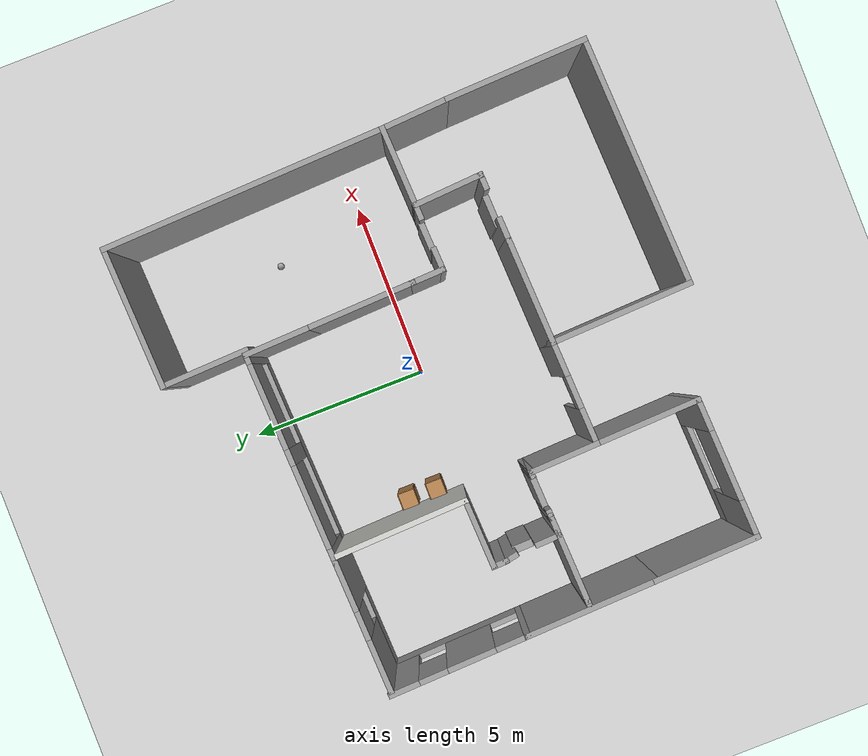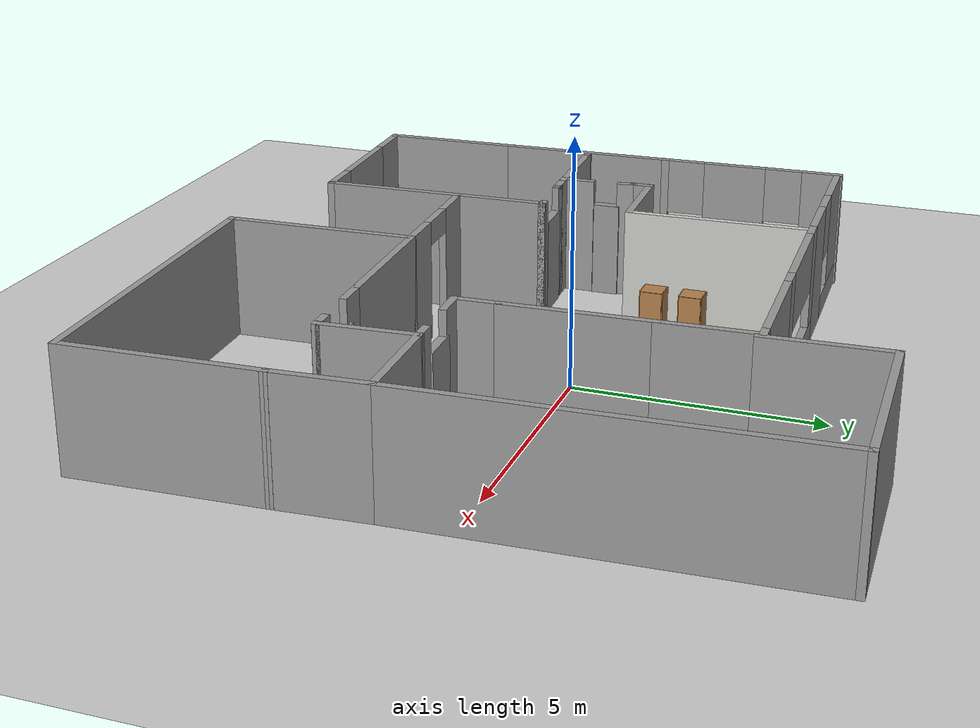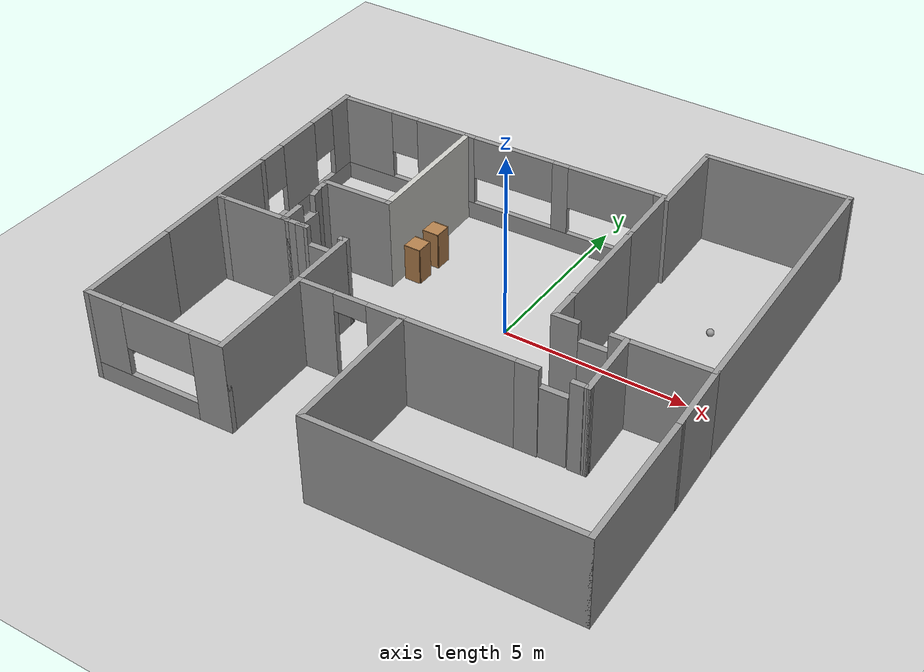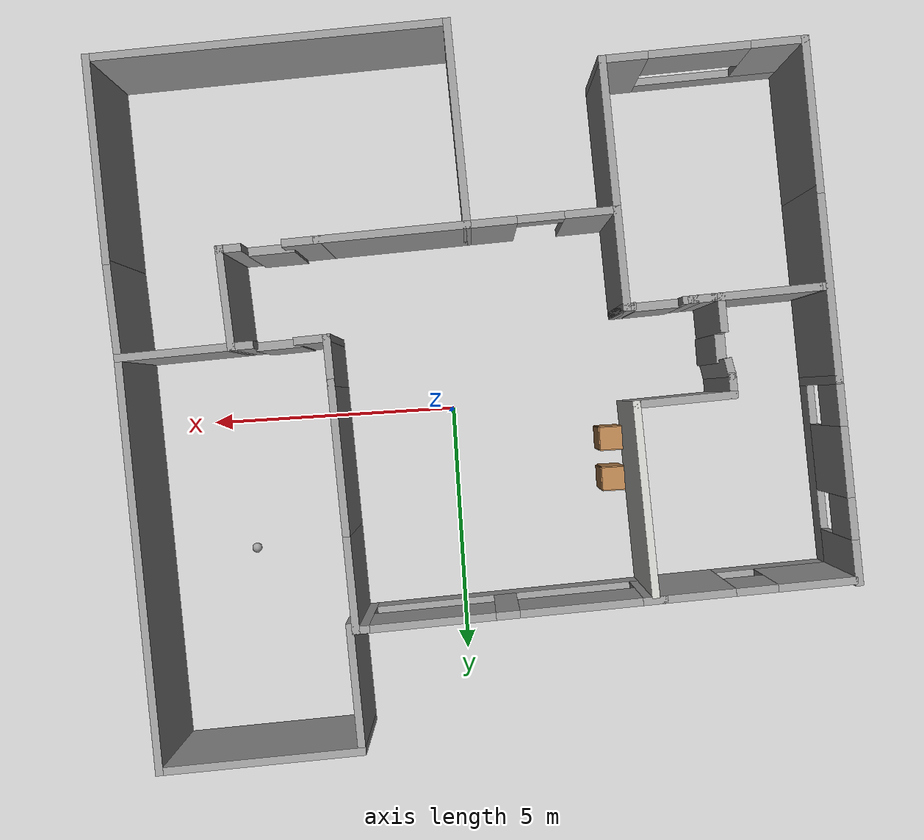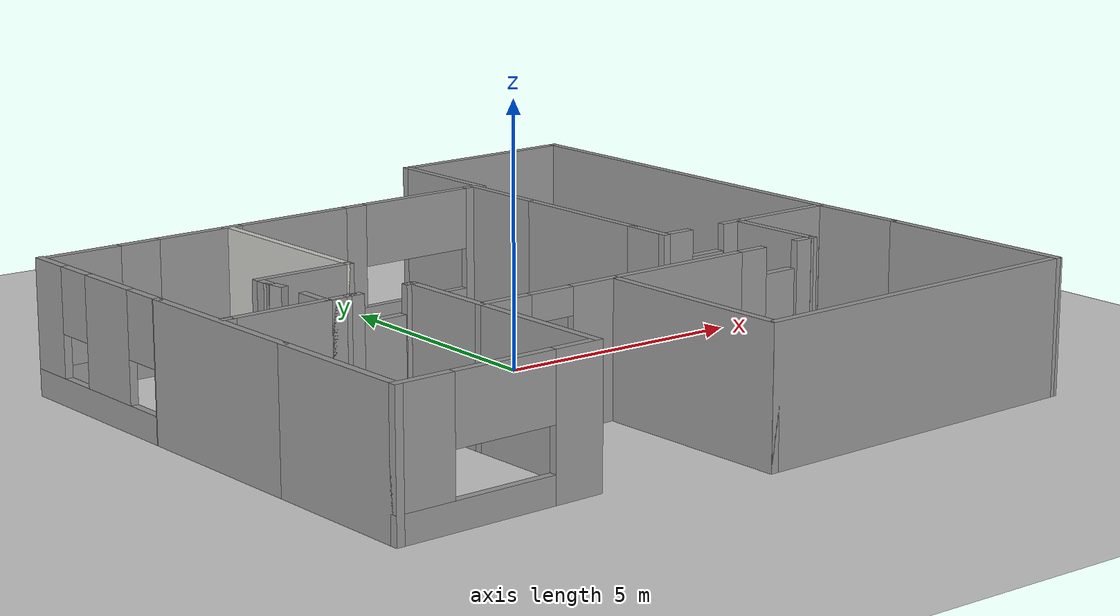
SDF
<sdf version="1.6">
 <world name="default">
  <light name="sun" type="directional">
   <pose>0 0 10 0 -0 0</pose>
   <diffuse>0.8 0.8 0.8 1</diffuse>
   <specular>0.2 0.2 0.2 1</specular>
   <attenuation>
    <range>1000</range>
    <constant>0.9</constant>
    <linear>0.01</linear>
    <quadratic>0.001</quadratic>
   </attenuation>
   <direction>-0.5 0.1 -0.9</direction>
  </light>
  <model name="ground_plane">
   <static>1</static>
   <link name="link">
    <collision name="collision">
     <geometry><plane><normal>0 0 1</normal><size>100 100</size></plane></geometry>
     <surface><friction><ode><mu>100</mu><mu2>50</mu2></ode></friction></surface>
    </collision>
    <visual name="visual">
     <cast_shadows>0</cast_shadows>
     <geometry><plane><normal>0 0 1</normal><size>100 100</size></plane></geometry>
     <material>
      <script><uri>file://media/materials/scripts/gazebo.material</uri><name>Gazebo/Grey</name></script>
     </material>
    </visual>
   </link>
  </model>
  <gravity>0 0 -9.8</gravity>
  <magnetic_field>6e-06 2.3e-05 -4.2e-05</magnetic_field>
  <atmosphere type="adiabatic"/>
  <physics name="default_physics" default="0" type="ode">
   <max_step_size>0.001</max_step_size>
   <real_time_factor>1</real_time_factor>
   <real_time_update_rate>1000</real_time_update_rate>
  </physics>
  <scene><ambient>0.4 0.4 0.4 1</ambient><background>0.7 0.7 0.7 1</background><shadows>1</shadows></scene>
  <spherical_coordinates>
   <surface_model>EARTH_WGS84</surface_model>
   <latitude_deg>0</latitude_deg>
   <longitude_deg>0</longitude_deg>
   <elevation>0</elevation>
   <heading_deg>0</heading_deg>
  </spherical_coordinates>
  <model name="my_world">
   <pose>-0.534202 -0.544996 0 0 -0 0.039051</pose>
   <link name="Door_1">
    <collision name="Door_1_Collision">
     <geometry><box><size>0.9 0.17 2</size></box></geometry>
     <pose>0 0 1 0 -0 0</pose>
    </collision>
    <visual name="Door_1_Visual">
     <pose>0 0 1 0 -0 0</pose>
     <geometry><box><size>0.9 0.17 2</size></box></geometry>
     <material>
      <script><uri>file://media/materials/scripts/gazebo.material</uri><name>Gazebo/Grey</name></script>
     </material>
    </visual>
    <pose>3.7552 -1.0485 0 0 -0 0</pose>
   </link>
   <link name="Door_2">
    <collision name="Door_2_Collision">
     <geometry><box><size>0.9 0.17 2</size></box></geometry>
     <pose>0 0 1 0 -0 0</pose>
    </collision>
    <visual name="Door_2_Visual">
     <pose>0 0 1 0 -0 0</pose>
     <geometry><box><size>0.9 0.17 2</size></box></geometry>
     <material>
      <script><uri>file://media/materials/scripts/gazebo.material</uri><name>Gazebo/Grey</name></script>
     </material>
    </visual>
    <pose>3.7207 -2.8885 0 0 -0 3.13801</pose>
   </link>
   <link name="Door_4">
    <collision name="Door_4_Collision">
     <geometry><box><size>0.555 0.2 2</size></box></geometry>
     <pose>0 0 1 0 -0 0</pose>
    </collision>
    <visual name="Door_4_Visual">
     <pose>0 0 1 0 -0 0</pose>
     <geometry><box><size>0.555 0.2 2</size></box></geometry>
     <material>
      <script><uri>file://media/materials/scripts/gazebo.material</uri><name>Gazebo/Grey</name></script>
     </material>
    </visual>
    <pose>-4.7088 -0.1285 0 0 -0 1.55395</pose>
   </link>
   <link name="Door_5">
    <collision name="Door_5_Collision">
     <geometry><box><size>0.9 0.17 2</size></box></geometry>
     <pose>0 0 1 0 -0 0</pose>
    </collision>
    <visual name="Door_5_Visual">
     <pose>0 0 1 0 -0 0</pose>
     <geometry><box><size>0.9 0.17 2</size></box></geometry>
     <material>
      <script><uri>file://media/materials/scripts/gazebo.material</uri><name>Gazebo/Grey</name></script>
     </material>
    </visual>
    <pose>-3.5818 -1.083 0 0 -0 0</pose>
   </link>
   <link name="Wall_0">
    <pose>-1.5008 -2.925 0 0 -0 0</pose>
    <visual name="Wall_0_Visual_0">
     <pose>-0.96325 0 1.25 0 -0 0</pose>
     <geometry><box><size>1.0735 0.15 2.5</size></box></geometry>
     <material>
      <script><uri>file://media/materials/scripts/gazebo.material</uri><name>Gazebo/Grey</name></script>
      <ambient>1 1 1 1</ambient>
     </material>
     <meta><layer>0</layer></meta>
    </visual>
    <collision name="Wall_0_Collision_0">
     <geometry><box><size>1.0735 0.15 2.5</size></box></geometry>
     <pose>-0.96325 0 1.25 0 -0 0</pose>
    </collision>
    <visual name="Wall_0_Visual_1">
     <pose>0.98675 0 1.25 0 -0 0</pose>
     <geometry><box><size>1.0265 0.15 2.5</size></box></geometry>
     <material>
      <script><uri>file://media/materials/scripts/gazebo.material</uri><name>Gazebo/Grey</name></script>
      <ambient>1 1 1 1</ambient>
     </material>
     <meta><layer>0</layer></meta>
    </visual>
    <collision name="Wall_0_Collision_1">
     <geometry><box><size>1.0265 0.15 2.5</size></box></geometry>
     <pose>0.98675 0 1.25 0 -0 0</pose>
    </collision>
    <visual name="Wall_0_Visual_2">
     <pose>0.0235 0 2.25 0 -0 0</pose>
     <geometry><box><size>0.9 0.15 0.5</size></box></geometry>
     <material>
      <script><uri>file://media/materials/scripts/gazebo.material</uri><name>Gazebo/Grey</name></script>
      <ambient>1 1 1 1</ambient>
     </material>
     <meta><layer>0</layer></meta>
    </visual>
    <collision name="Wall_0_Collision_2">
     <geometry><box><size>0.9 0.15 0.5</size></box></geometry>
     <pose>0.0235 0 2.25 0 -0 0</pose>
    </collision>
   </link>
   <link name="Wall_10">
    <collision name="Wall_10_Collision">
     <geometry><box><size>4 0.15 2.5</size></box></geometry>
     <pose>0 0 1.25 0 -0 0</pose>
    </collision>
    <visual name="Wall_10_Visual">
     <pose>0 0 1.25 0 -0 0</pose>
     <geometry><box><size>4 0.15 2.5</size></box></geometry>
     <material>
      <script><uri>file://media/materials/scripts/gazebo.material</uri><name>Gazebo/Grey</name></script>
      <ambient>1 1 1 1</ambient>
     </material>
     <meta><layer>0</layer></meta>
    </visual>
    <pose>6.7742 -4.85 0 0 -0 1.5708</pose>
   </link>
   <link name="Wall_12">
    <collision name="Wall_12_Collision">
     <geometry><box><size>3 0.15 2.5</size></box></geometry>
     <pose>0 0 1.25 0 -0 0</pose>
    </collision>
    <visual name="Wall_12_Visual">
     <pose>0 0 1.25 0 -0 0</pose>
     <geometry><box><size>3 0.15 2.5</size></box></geometry>
     <material>
      <script><uri>file://media/materials/scripts/gazebo.material</uri><name>Gazebo/Grey</name></script>
      <ambient>1 1 1 1</ambient>
     </material>
     <meta><layer>0</layer></meta>
    </visual>
    <pose>1.3492 -2.925 0 0 -0 0</pose>
   </link>
   <link name="Wall_14">
    <collision name="Wall_14_Collision">
     <geometry><box><size>3 0.15 2.5</size></box></geometry>
     <pose>0 0 1.25 0 -0 0</pose>
    </collision>
    <visual name="Wall_14_Visual">
     <pose>0 0 1.25 0 -0 0</pose>
     <geometry><box><size>3 0.15 2.5</size></box></geometry>
     <material>
      <script><uri>file://media/materials/scripts/gazebo.material</uri><name>Gazebo/Grey</name></script>
      <ambient>1 1 1 1</ambient>
     </material>
     <meta><layer>0</layer></meta>
    </visual>
    <pose>-6.7758 -4.35 0 0 -0 1.5708</pose>
   </link>
   <link name="Wall_16">
    <collision name="Wall_16_Collision">
     <geometry><box><size>2 0.15 2.5</size></box></geometry>
     <pose>0 0 1.25 0 -0 0</pose>
    </collision>
    <visual name="Wall_16_Visual">
     <pose>0 0 1.25 0 -0 0</pose>
     <geometry><box><size>2 0.15 2.5</size></box></geometry>
     <material>
      <script><uri>file://media/materials/scripts/gazebo.material</uri><name>Gazebo/Grey</name></script>
      <ambient>1 1 1 1</ambient>
     </material>
     <meta><layer>0</layer></meta>
    </visual>
    <pose>-2.9258 -2 0 0 -0 1.5708</pose>
   </link>
   <link name="Wall_18">
    <collision name="Wall_18_Collision">
     <geometry><box><size>1 0.15 2.5</size></box></geometry>
     <pose>0 0 1.25 0 -0 0</pose>
    </collision>
    <visual name="Wall_18_Visual">
     <pose>0 0 1.25 0 -0 0</pose>
     <geometry><box><size>1 0.15 2.5</size></box></geometry>
     <material>
      <script><uri>file://media/materials/scripts/gazebo.material</uri><name>Gazebo/Grey</name></script>
      <ambient>1 1 1 1</ambient>
     </material>
     <meta><layer>0</layer></meta>
    </visual>
    <pose>2.7777 -0.635 0 0 -0 1.5708</pose>
   </link>
   <link name="Wall_20">
    <collision name="Wall_20_Collision">
     <geometry><box><size>3 0.15 2.5</size></box></geometry>
     <pose>0 0 1.25 0 -0 0</pose>
    </collision>
    <visual name="Wall_20_Visual">
     <pose>0 0 1.25 0 -0 0</pose>
     <geometry><box><size>3 0.15 2.5</size></box></geometry>
     <material>
      <script><uri>file://media/materials/scripts/gazebo.material</uri><name>Gazebo/Grey</name></script>
      <ambient>1 1 1 1</ambient>
     </material>
     <meta><layer>0</layer></meta>
    </visual>
    <pose>2.7777 1.215 0 0 -0 1.5708</pose>
   </link>
   <link name="Wall_22">
    <collision name="Wall_22_Collision">
     <geometry><box><size>2 0.15 2.5</size></box></geometry>
     <pose>0 0 1.25 0 -0 0</pose>
    </collision>
    <visual name="Wall_22_Visual">
     <pose>0 0 1.25 0 -0 0</pose>
     <geometry><box><size>2 0.15 2.5</size></box></geometry>
     <material>
      <script><uri>file://media/materials/scripts/gazebo.material</uri><name>Gazebo/Grey</name></script>
      <ambient>1 1 1 1</ambient>
     </material>
     <meta><layer>0</layer></meta>
    </visual>
    <pose>2.7777 3.565 0 0 -0 1.5708</pose>
   </link>
   <link name="Wall_24">
    <pose>-0.147301 4.49 0 0 -0 3.14159</pose>
    <visual name="Wall_24_Visual_0">
     <pose>-2.83017 0 1.25 0 -0 0</pose>
     <geometry><box><size>0.339666 0.15 2.5</size></box></geometry>
     <material>
      <script><uri>file://media/materials/scripts/gazebo.material</uri><name>Gazebo/Grey</name></script>
      <ambient>1 1 1 1</ambient>
     </material>
     <meta><layer>0</layer></meta>
    </visual>
    <collision name="Wall_24_Collision_0">
     <geometry><box><size>0.339666 0.15 2.5</size></box></geometry>
     <pose>-2.83017 0 1.25 0 -0 0</pose>
    </collision>
    <visual name="Wall_24_Visual_1">
     <pose>0.169833 0 0.25 0 -0 0</pose>
     <geometry><box><size>5.66033 0.15 0.5</size></box></geometry>
     <material>
      <script><uri>file://media/materials/scripts/gazebo.material</uri><name>Gazebo/Grey</name></script>
      <ambient>1 1 1 1</ambient>
     </material>
     <meta><layer>0</layer></meta>
    </visual>
    <collision name="Wall_24_Collision_1">
     <geometry><box><size>5.66033 0.15 0.5</size></box></geometry>
     <pose>0.169833 0 0.25 0 -0 0</pose>
    </collision>
    <visual name="Wall_24_Visual_2">
     <pose>-0.031921 0 1.5 0 -0 0</pose>
     <geometry><box><size>0.456375 0.15 2</size></box></geometry>
     <material>
      <script><uri>file://media/materials/scripts/gazebo.material</uri><name>Gazebo/Grey</name></script>
      <ambient>1 1 1 1</ambient>
     </material>
     <meta><layer>0</layer></meta>
    </visual>
    <collision name="Wall_24_Collision_2">
     <geometry><box><size>0.456375 0.15 2</size></box></geometry>
     <pose>-0.031921 0 1.5 0 -0 0</pose>
    </collision>
    <visual name="Wall_24_Visual_3">
     <pose>2.76518 0 1.5 0 -0 0</pose>
     <geometry><box><size>0.469634 0.15 2</size></box></geometry>
     <material>
      <script><uri>file://media/materials/scripts/gazebo.material</uri><name>Gazebo/Grey</name></script>
      <ambient>1 1 1 1</ambient>
     </material>
     <meta><layer>0</layer></meta>
    </visual>
    <collision name="Wall_24_Collision_3">
     <geometry><box><size>0.469634 0.15 2</size></box></geometry>
     <pose>2.76518 0 1.5 0 -0 0</pose>
    </collision>
    <visual name="Wall_24_Visual_4">
     <pose>-1.46022 0 1.9 0 -0 0</pose>
     <geometry><box><size>2.40022 0.15 1.2</size></box></geometry>
     <material>
      <script><uri>file://media/materials/scripts/gazebo.material</uri><name>Gazebo/Grey</name></script>
      <ambient>1 1 1 1</ambient>
     </material>
     <meta><layer>0</layer></meta>
    </visual>
    <collision name="Wall_24_Collision_4">
     <geometry><box><size>2.40022 0.15 1.2</size></box></geometry>
     <pose>-1.46022 0 1.9 0 -0 0</pose>
    </collision>
    <visual name="Wall_24_Visual_5">
     <pose>1.36332 0 1.9 0 -0 0</pose>
     <geometry><box><size>2.3341 0.15 1.2</size></box></geometry>
     <material>
      <script><uri>file://media/materials/scripts/gazebo.material</uri><name>Gazebo/Grey</name></script>
      <ambient>1 1 1 1</ambient>
     </material>
     <meta><layer>0</layer></meta>
    </visual>
    <collision name="Wall_24_Collision_5">
     <geometry><box><size>2.3341 0.15 1.2</size></box></geometry>
     <pose>1.36332 0 1.9 0 -0 0</pose>
    </collision>
   </link>
   <link name="Wall_28">
    <collision name="Wall_28_Collision">
     <geometry><box><size>3.75 0.15 2.5</size></box></geometry>
     <pose>0 0 1.25 0 -0 0</pose>
    </collision>
    <visual name="Wall_28_Visual">
     <pose>0 0 1.25 0 -0 0</pose>
     <geometry><box><size>3.75 0.15 2.5</size></box></geometry>
     <material>
      <script><uri>file://media/materials/scripts/gazebo.material</uri><name>Gazebo/Grey</name></script>
      <ambient>1 1 1 1</ambient>
     </material>
     <meta><layer>0</layer></meta>
    </visual>
    <pose>-6.7758 -1.125 0 0 -0 1.5708</pose>
   </link>
   <link name="Wall_32">
    <pose>-4.8723 4.49 0 0 -0 3.14159</pose>
    <visual name="Wall_32_Visual_0">
     <pose>-1.15199 0 1.25 0 -0 0</pose>
     <geometry><box><size>1.44602 0.15 2.5</size></box></geometry>
     <material>
      <script><uri>file://media/materials/scripts/gazebo.material</uri><name>Gazebo/Grey</name></script>
      <ambient>1 1 1 1</ambient>
     </material>
     <meta><layer>0</layer></meta>
    </visual>
    <collision name="Wall_32_Collision_0">
     <geometry><box><size>1.44602 0.15 2.5</size></box></geometry>
     <pose>-1.15199 0 1.25 0 -0 0</pose>
    </collision>
    <visual name="Wall_32_Visual_1">
     <pose>0.723008 0 0.25 0 -0 0</pose>
     <geometry><box><size>2.30398 0.15 0.5</size></box></geometry>
     <material>
      <script><uri>file://media/materials/scripts/gazebo.material</uri><name>Gazebo/Grey</name></script>
      <ambient>1 1 1 1</ambient>
     </material>
     <meta><layer>0</layer></meta>
    </visual>
    <collision name="Wall_32_Collision_1">
     <geometry><box><size>2.30398 0.15 0.5</size></box></geometry>
     <pose>0.723008 0 0.25 0 -0 0</pose>
    </collision>
    <visual name="Wall_32_Visual_2">
     <pose>1.12301 0 1.5 0 -0 0</pose>
     <geometry><box><size>1.50398 0.15 2</size></box></geometry>
     <material>
      <script><uri>file://media/materials/scripts/gazebo.material</uri><name>Gazebo/Grey</name></script>
      <ambient>1 1 1 1</ambient>
     </material>
     <meta><layer>0</layer></meta>
    </visual>
    <collision name="Wall_32_Collision_2">
     <geometry><box><size>1.50398 0.15 2</size></box></geometry>
     <pose>1.12301 0 1.5 0 -0 0</pose>
    </collision>
    <visual name="Wall_32_Visual_3">
     <pose>-0.028984 0 1.9 0 -0 0</pose>
     <geometry><box><size>0.8 0.15 1.2</size></box></geometry>
     <material>
      <script><uri>file://media/materials/scripts/gazebo.material</uri><name>Gazebo/Grey</name></script>
      <ambient>1 1 1 1</ambient>
     </material>
     <meta><layer>0</layer></meta>
    </visual>
    <collision name="Wall_32_Collision_3">
     <geometry><box><size>0.8 0.15 1.2</size></box></geometry>
     <pose>-0.028984 0 1.9 0 -0 0</pose>
    </collision>
   </link>
   <link name="Wall_34">
    <pose>-6.7758 2.6 0 0 -0 1.5708</pose>
    <visual name="Wall_34_Visual_0">
     <pose>-1.91466 0 1.25 0 -0 0</pose>
     <geometry><box><size>0.170681 0.15 2.5</size></box></geometry>
     <material>
      <script><uri>file://media/materials/scripts/gazebo.material</uri><name>Gazebo/Grey</name></script>
      <ambient>1 1 1 1</ambient>
     </material>
     <meta><layer>0</layer></meta>
    </visual>
    <collision name="Wall_34_Collision_0">
     <geometry><box><size>0.170681 0.15 2.5</size></box></geometry>
     <pose>-1.91466 0 1.25 0 -0 0</pose>
    </collision>
    <visual name="Wall_34_Visual_1">
     <pose>0.085341 0 0.25 0 -0 0</pose>
     <geometry><box><size>3.82932 0.15 0.5</size></box></geometry>
     <material>
      <script><uri>file://media/materials/scripts/gazebo.material</uri><name>Gazebo/Grey</name></script>
      <ambient>1 1 1 1</ambient>
     </material>
     <meta><layer>0</layer></meta>
    </visual>
    <collision name="Wall_34_Collision_1">
     <geometry><box><size>3.82932 0.15 0.5</size></box></geometry>
     <pose>0.085341 0 0.25 0 -0 0</pose>
    </collision>
    <visual name="Wall_34_Visual_2">
     <pose>-0.351481 0 1.5 0 -0 0</pose>
     <geometry><box><size>1.35567 0.15 2</size></box></geometry>
     <material>
      <script><uri>file://media/materials/scripts/gazebo.material</uri><name>Gazebo/Grey</name></script>
      <ambient>1 1 1 1</ambient>
     </material>
     <meta><layer>0</layer></meta>
    </visual>
    <collision name="Wall_34_Collision_2">
     <geometry><box><size>1.35567 0.15 2</size></box></geometry>
     <pose>-0.351481 0 1.5 0 -0 0</pose>
    </collision>
    <visual name="Wall_34_Visual_3">
     <pose>1.56318 0 1.5 0 -0 0</pose>
     <geometry><box><size>0.873643 0.15 2</size></box></geometry>
     <material>
      <script><uri>file://media/materials/scripts/gazebo.material</uri><name>Gazebo/Grey</name></script>
      <ambient>1 1 1 1</ambient>
     </material>
     <meta><layer>0</layer></meta>
    </visual>
    <collision name="Wall_34_Collision_3">
     <geometry><box><size>0.873643 0.15 2</size></box></geometry>
     <pose>1.56318 0 1.5 0 -0 0</pose>
    </collision>
    <visual name="Wall_34_Visual_4">
     <pose>-1.42932 0 1.9 0 -0 0</pose>
     <geometry><box><size>0.8 0.15 1.2</size></box></geometry>
     <material>
      <script><uri>file://media/materials/scripts/gazebo.material</uri><name>Gazebo/Grey</name></script>
      <ambient>1 1 1 1</ambient>
     </material>
     <meta><layer>0</layer></meta>
    </visual>
    <collision name="Wall_34_Collision_4">
     <geometry><box><size>0.8 0.15 1.2</size></box></geometry>
     <pose>-1.42932 0 1.9 0 -0 0</pose>
    </collision>
    <visual name="Wall_34_Visual_5">
     <pose>0.726357 0 1.9 0 -0 0</pose>
     <geometry><box><size>0.8 0.15 1.2</size></box></geometry>
     <material>
      <script><uri>file://media/materials/scripts/gazebo.material</uri><name>Gazebo/Grey</name></script>
      <ambient>1 1 1 1</ambient>
     </material>
     <meta><layer>0</layer></meta>
    </visual>
    <collision name="Wall_34_Collision_5">
     <geometry><box><size>0.8 0.15 1.2</size></box></geometry>
     <pose>0.726357 0 1.9 0 -0 0</pose>
    </collision>
   </link>
   <link name="Wall_4">
    <collision name="Wall_4_Collision">
     <geometry><box><size>3 0.15 2.5</size></box></geometry>
     <pose>0 0 1.25 0 -0 0</pose>
    </collision>
    <visual name="Wall_4_Visual">
     <pose>0 0 1.25 0 -0 0</pose>
     <geometry><box><size>3 0.15 2.5</size></box></geometry>
     <material>
      <script><uri>file://media/materials/scripts/gazebo.material</uri><name>Gazebo/Grey</name></script>
      <ambient>1 1 1 1</ambient>
     </material>
     <meta><layer>0</layer></meta>
    </visual>
    <pose>-2.9258 -4.35 0 0 0 -1.5708</pose>
   </link>
   <link name="Wall_42">
    <collision name="Wall_42_Collision">
     <geometry><box><size>0.15 0.15 2.5</size></box></geometry>
     <pose>0 0 1.25 0 -0 0</pose>
    </collision>
    <visual name="Wall_42_Visual">
     <pose>0 0 1.25 0 -0 0</pose>
     <geometry><box><size>0.15 0.15 2.5</size></box></geometry>
     <material>
      <script><uri>file://media/materials/scripts/gazebo.material</uri><name>Gazebo/Grey</name></script>
      <ambient>1 1 1 1</ambient>
     </material>
     <meta><layer>0</layer></meta>
    </visual>
    <pose>-2.9258 0.775 0 0 -0 0</pose>
   </link>
   <link name="Wall_43">
    <collision name="Wall_43_Collision">
     <geometry><box><size>3.75 0.15 2.5</size></box></geometry>
     <pose>0 0 1.25 0 -0 0</pose>
    </collision>
    <visual name="Wall_43_Visual">
     <pose>0 0 1.25 0 -0 0</pose>
     <geometry><box><size>3.75 0.15 2.5</size></box></geometry>
     <material>
      <script><uri>file://media/materials/scripts/gazebo.material</uri><name>Gazebo/CeilingTiled</name></script>
      <ambient>1 1 1 1</ambient>
     </material>
     <meta><layer>0</layer></meta>
    </visual>
    <pose>-2.9258 2.575 0 0 -0 1.5708</pose>
   </link>
   <link name="Wall_45">
    <collision name="Wall_45_Collision">
     <geometry><box><size>2 0.15 2.5</size></box></geometry>
     <pose>0 0 1.25 0 -0 0</pose>
    </collision>
    <visual name="Wall_45_Visual">
     <pose>0 0 1.25 0 -0 0</pose>
     <geometry><box><size>2 0.15 2.5</size></box></geometry>
     <material>
      <script><uri>file://media/materials/scripts/gazebo.material</uri><name>Gazebo/Grey</name></script>
      <ambient>1 1 1 1</ambient>
     </material>
     <meta><layer>0</layer></meta>
    </visual>
    <pose>-3.8508 0.775 0 0 -0 3.14159</pose>
   </link>
   <link name="Wall_46">
    <collision name="Wall_46_Collision">
     <geometry><box><size>0.5 0.15 2.5</size></box></geometry>
     <pose>0 0 1.25 0 -0 0</pose>
    </collision>
    <visual name="Wall_46_Visual">
     <pose>0 0 1.25 0 -0 0</pose>
     <geometry><box><size>0.5 0.15 2.5</size></box></geometry>
     <material>
      <script><uri>file://media/materials/scripts/gazebo.material</uri><name>Gazebo/Grey</name></script>
      <ambient>1 1 1 1</ambient>
     </material>
     <meta><layer>0</layer></meta>
    </visual>
    <pose>-4.7758 0.6 0 0 0 -1.5708</pose>
   </link>
   <link name="Wall_48">
    <collision name="Wall_48_Collision">
     <geometry><box><size>0.5 0.15 2.5</size></box></geometry>
     <pose>0 0 1.25 0 -0 0</pose>
    </collision>
    <visual name="Wall_48_Visual">
     <pose>0 0 1.25 0 -0 0</pose>
     <geometry><box><size>0.5 0.15 2.5</size></box></geometry>
     <material>
      <script><uri>file://media/materials/scripts/gazebo.material</uri><name>Gazebo/Grey</name></script>
      <ambient>1 1 1 1</ambient>
     </material>
     <meta><layer>0</layer></meta>
    </visual>
    <pose>-4.4353 -1.0945 0 0 -0 3.14159</pose>
   </link>
   <link name="Wall_49">
    <collision name="Wall_49_Collision">
     <geometry><box><size>0.15 0.15 2.5</size></box></geometry>
     <pose>0 0 1.25 0 -0 0</pose>
    </collision>
    <visual name="Wall_49_Visual">
     <pose>0 0 1.25 0 -0 0</pose>
     <geometry><box><size>0.15 0.15 2.5</size></box></geometry>
     <material>
      <script><uri>file://media/materials/scripts/gazebo.material</uri><name>Gazebo/Grey</name></script>
      <ambient>1 1 1 1</ambient>
     </material>
     <meta><layer>0</layer></meta>
    </visual>
    <pose>-4.6103 -1.0945 0 0 -0 0</pose>
   </link>
   <link name="Wall_5">
    <pose>-4.8508 -5.775 0 0 -0 3.14159</pose>
    <visual name="Wall_5_Visual_0">
     <pose>-1.52775 0 1.25 0 -0 0</pose>
     <geometry><box><size>0.944491 0.15 2.5</size></box></geometry>
     <material>
      <script><uri>file://media/materials/scripts/gazebo.material</uri><name>Gazebo/Grey</name></script>
      <ambient>1 1 1 1</ambient>
     </material>
     <meta><layer>0</layer></meta>
    </visual>
    <collision name="Wall_5_Collision_0">
     <geometry><box><size>0.944491 0.15 2.5</size></box></geometry>
     <pose>-1.52775 0 1.25 0 -0 0</pose>
    </collision>
    <visual name="Wall_5_Visual_1">
     <pose>0.472246 0 0.25 0 -0 0</pose>
     <geometry><box><size>3.05551 0.15 0.5</size></box></geometry>
     <material>
      <script><uri>file://media/materials/scripts/gazebo.material</uri><name>Gazebo/Grey</name></script>
      <ambient>1 1 1 1</ambient>
     </material>
     <meta><layer>0</layer></meta>
    </visual>
    <collision name="Wall_5_Collision_1">
     <geometry><box><size>3.05551 0.15 0.5</size></box></geometry>
     <pose>0.472246 0 0.25 0 -0 0</pose>
    </collision>
    <visual name="Wall_5_Visual_2">
     <pose>1.44753 0 1.5 0 -0 0</pose>
     <geometry><box><size>1.10493 0.15 2</size></box></geometry>
     <material>
      <script><uri>file://media/materials/scripts/gazebo.material</uri><name>Gazebo/Grey</name></script>
      <ambient>1 1 1 1</ambient>
     </material>
     <meta><layer>0</layer></meta>
    </visual>
    <collision name="Wall_5_Collision_2">
     <geometry><box><size>1.10493 0.15 2</size></box></geometry>
     <pose>1.44753 0 1.5 0 -0 0</pose>
    </collision>
    <visual name="Wall_5_Visual_3">
     <pose>-0.080221 0 1.9 0 -0 0</pose>
     <geometry><box><size>1.95057 0.15 1.2</size></box></geometry>
     <material>
      <script><uri>file://media/materials/scripts/gazebo.material</uri><name>Gazebo/Grey</name></script>
      <ambient>1 1 1 1</ambient>
     </material>
     <meta><layer>0</layer></meta>
    </visual>
    <collision name="Wall_5_Collision_3">
     <geometry><box><size>1.95057 0.15 1.2</size></box></geometry>
     <pose>-0.080221 0 1.9 0 -0 0</pose>
    </collision>
   </link>
   <link name="Wall_50">
    <collision name="Wall_50_Collision">
     <geometry><box><size>0.25 0.15 2.5</size></box></geometry>
     <pose>0 0 1.25 0 -0 0</pose>
    </collision>
    <visual name="Wall_50_Visual">
     <pose>0 0 1.25 0 -0 0</pose>
     <geometry><box><size>0.25 0.15 2.5</size></box></geometry>
     <material>
      <script><uri>file://media/materials/scripts/gazebo.material</uri><name>Gazebo/Grey</name></script>
      <ambient>1 1 1 1</ambient>
     </material>
     <meta><layer>0</layer></meta>
    </visual>
    <pose>-4.6603 -1.0945 0 0 -0 3.14159</pose>
   </link>
   <link name="Wall_51">
    <collision name="Wall_51_Collision">
     <geometry><box><size>0.15 0.15 2.5</size></box></geometry>
     <pose>0 0 1.25 0 -0 0</pose>
    </collision>
    <visual name="Wall_51_Visual">
     <pose>0 0 1.25 0 -0 0</pose>
     <geometry><box><size>0.15 0.15 2.5</size></box></geometry>
     <material>
      <script><uri>file://media/materials/scripts/gazebo.material</uri><name>Gazebo/Grey</name></script>
      <ambient>1 1 1 1</ambient>
     </material>
     <meta><layer>0</layer></meta>
    </visual>
    <pose>-4.7103 -1.0945 0 0 -0 0</pose>
   </link>
   <link name="Wall_55">
    <collision name="Wall_55_Collision">
     <geometry><box><size>0.75 0.15 2.5</size></box></geometry>
     <pose>0 0 1.25 0 -0 0</pose>
    </collision>
    <visual name="Wall_55_Visual">
     <pose>0 0 1.25 0 -0 0</pose>
     <geometry><box><size>0.75 0.15 2.5</size></box></geometry>
     <material>
      <script><uri>file://media/materials/scripts/gazebo.material</uri><name>Gazebo/Grey</name></script>
      <ambient>1 1 1 1</ambient>
     </material>
     <meta><layer>0</layer></meta>
    </visual>
    <pose>-4.7103 -0.7945 0 0 -0 1.5708</pose>
   </link>
   <link name="Wall_58">
    <collision name="Wall_58_Collision">
     <geometry><box><size>0.16 0.15 2.5</size></box></geometry>
     <pose>0 0 1.25 0 -0 0</pose>
    </collision>
    <visual name="Wall_58_Visual">
     <pose>0 0 1.25 0 -0 0</pose>
     <geometry><box><size>0.16 0.15 2.5</size></box></geometry>
     <material>
      <script><uri>file://media/materials/scripts/gazebo.material</uri><name>Gazebo/Grey</name></script>
      <ambient>1 1 1 1</ambient>
     </material>
     <meta><layer>0</layer></meta>
    </visual>
    <pose>4.6292 -2.925 0 0 -0 0</pose>
   </link>
   <link name="Wall_59">
    <collision name="Wall_59_Collision">
     <geometry><box><size>2 0.15 2.5</size></box></geometry>
     <pose>0 0 1.25 0 -0 0</pose>
    </collision>
    <visual name="Wall_59_Visual">
     <pose>0 0 1.25 0 -0 0</pose>
     <geometry><box><size>2 0.15 2.5</size></box></geometry>
     <material>
      <script><uri>file://media/materials/scripts/gazebo.material</uri><name>Gazebo/Grey</name></script>
      <ambient>1 1 1 1</ambient>
     </material>
     <meta><layer>0</layer></meta>
    </visual>
    <pose>4.6112 -2 0 0 -0 1.59566</pose>
   </link>
   <link name="Wall_60">
    <collision name="Wall_60_Collision">
     <geometry><box><size>2.296 0.15 2.5</size></box></geometry>
     <pose>0 0 1.25 0 -0 0</pose>
    </collision>
    <visual name="Wall_60_Visual">
     <pose>0 0 1.25 0 -0 0</pose>
     <geometry><box><size>2.296 0.15 2.5</size></box></geometry>
     <material>
      <script><uri>file://media/materials/scripts/gazebo.material</uri><name>Gazebo/Grey</name></script>
      <ambient>1 1 1 1</ambient>
     </material>
     <meta><layer>0</layer></meta>
    </visual>
    <pose>5.6612 -1.075 0 0 -0 0</pose>
   </link>
   <link name="Wall_61">
    <collision name="Wall_61_Collision">
     <geometry><box><size>2.00043 0.15 2.5</size></box></geometry>
     <pose>0 0 1.25 0 -0 0</pose>
    </collision>
    <visual name="Wall_61_Visual">
     <pose>0 0 1.25 0 -0 0</pose>
     <geometry><box><size>2.00043 0.15 2.5</size></box></geometry>
     <material>
      <script><uri>file://media/materials/scripts/gazebo.material</uri><name>Gazebo/Grey</name></script>
      <ambient>1 1 1 1</ambient>
     </material>
     <meta><layer>0</layer></meta>
    </visual>
    <pose>6.7542 -2 0 0 0 -1.54918</pose>
   </link>
   <link name="Wall_64">
    <collision name="Wall_64_Collision">
     <geometry><box><size>8 0.15 2.5</size></box></geometry>
     <pose>0 0 1.25 0 -0 0</pose>
    </collision>
    <visual name="Wall_64_Visual">
     <pose>0 0 1.25 0 -0 0</pose>
     <geometry><box><size>8 0.15 2.5</size></box></geometry>
     <material>
      <script><uri>file://media/materials/scripts/gazebo.material</uri><name>Gazebo/Grey</name></script>
      <ambient>1 1 1 1</ambient>
     </material>
     <meta><layer>0</layer></meta>
    </visual>
    <pose>6.7342 2.85 0 0 -0 1.5708</pose>
   </link>
   <link name="Wall_65">
    <collision name="Wall_65_Collision">
     <geometry><box><size>4 0.15 2.5</size></box></geometry>
     <pose>0 0 1.25 0 -0 0</pose>
    </collision>
    <visual name="Wall_65_Visual">
     <pose>0 0 1.25 0 -0 0</pose>
     <geometry><box><size>4 0.15 2.5</size></box></geometry>
     <material>
      <script><uri>file://media/materials/scripts/gazebo.material</uri><name>Gazebo/Grey</name></script>
      <ambient>1 1 1 1</ambient>
     </material>
     <meta><layer>0</layer></meta>
    </visual>
    <pose>4.8092 6.775 0 0 -0 3.14159</pose>
   </link>
   <link name="Wall_66">
    <collision name="Wall_66_Collision">
     <geometry><box><size>2.5 0.15 2.5</size></box></geometry>
     <pose>0 0 1.25 0 -0 0</pose>
    </collision>
    <visual name="Wall_66_Visual">
     <pose>0 0 1.25 0 -0 0</pose>
     <geometry><box><size>2.5 0.15 2.5</size></box></geometry>
     <material>
      <script><uri>file://media/materials/scripts/gazebo.material</uri><name>Gazebo/Grey</name></script>
      <ambient>1 1 1 1</ambient>
     </material>
     <meta><layer>0</layer></meta>
    </visual>
    <pose>2.8842 5.6 0 0 0 -1.5708</pose>
   </link>
   <link name="Wall_68">
    <collision name="Wall_68_Collision">
     <geometry><box><size>0.430967 0.15 2.5</size></box></geometry>
     <pose>0 0 1.25 0 -0 0</pose>
    </collision>
    <visual name="Wall_68_Visual">
     <pose>0 0 1.25 0 -0 0</pose>
     <geometry><box><size>0.430967 0.15 2.5</size></box></geometry>
     <material>
      <script><uri>file://media/materials/scripts/gazebo.material</uri><name>Gazebo/Grey</name></script>
      <ambient>1 1 1 1</ambient>
     </material>
     <meta><layer>0</layer></meta>
    </visual>
    <pose>-4.7538 0.28625 0 0 -0 1.72805</pose>
   </link>
   <link name="Wall_7">
    <collision name="Wall_7_Collision">
     <geometry><box><size>4 0.15 2.5</size></box></geometry>
     <pose>0 0 1.25 0 -0 0</pose>
    </collision>
    <visual name="Wall_7_Visual">
     <pose>0 0 1.25 0 -0 0</pose>
     <geometry><box><size>4 0.15 2.5</size></box></geometry>
     <material>
      <script><uri>file://media/materials/scripts/gazebo.material</uri><name>Gazebo/Grey</name></script>
      <ambient>1 1 1 1</ambient>
     </material>
     <meta><layer>0</layer></meta>
    </visual>
    <pose>-0.075801 -4.85 0 0 0 -1.5708</pose>
   </link>
   <link name="Wall_70">
    <collision name="Wall_70_Collision">
     <geometry><box><size>0.704 0.15 2.5</size></box></geometry>
     <pose>0 0 1.25 0 -0 0</pose>
    </collision>
    <visual name="Wall_70_Visual">
     <pose>0 0 1.25 0 -0 0</pose>
     <geometry><box><size>0.704 0.15 2.5</size></box></geometry>
     <material>
      <script><uri>file://media/materials/scripts/gazebo.material</uri><name>Gazebo/Grey</name></script>
      <ambient>1 1 1 1</ambient>
     </material>
     <meta><layer>0</layer></meta>
    </visual>
    <pose>3.0547 -1.06 0 0 -0 0</pose>
   </link>
   <link name="Wall_73">
    <collision name="Wall_73_Collision">
     <geometry><box><size>0.5 0.15 2.5</size></box></geometry>
     <pose>0 0 1.25 0 -0 0</pose>
    </collision>
    <visual name="Wall_73_Visual">
     <pose>0 0 1.25 0 -0 0</pose>
     <geometry><box><size>0.5 0.15 2.5</size></box></geometry>
     <material>
      <script><uri>file://media/materials/scripts/gazebo.material</uri><name>Gazebo/Grey</name></script>
      <ambient>1 1 1 1</ambient>
     </material>
     <meta><layer>0</layer></meta>
    </visual>
    <pose>4.4132 -1.075 0 0 -0 3.14159</pose>
   </link>
   <link name="Wall_75">
    <collision name="Wall_75_Collision">
     <geometry><box><size>0.75 0.15 2.5</size></box></geometry>
     <pose>0 0 1.25 0 -0 0</pose>
    </collision>
    <visual name="Wall_75_Visual">
     <pose>0 0 1.25 0 -0 0</pose>
     <geometry><box><size>0.75 0.15 2.5</size></box></geometry>
     <material>
      <script><uri>file://media/materials/scripts/gazebo.material</uri><name>Gazebo/Grey</name></script>
      <ambient>1 1 1 1</ambient>
     </material>
     <meta><layer>0</layer></meta>
    </visual>
    <pose>3.0742 -2.925 0 0 -0 0</pose>
   </link>
   <link name="Wall_77">
    <collision name="Wall_77_Collision">
     <geometry><box><size>0.5 0.15 2.5</size></box></geometry>
     <pose>0 0 1.25 0 -0 0</pose>
    </collision>
    <visual name="Wall_77_Visual">
     <pose>0 0 1.25 0 -0 0</pose>
     <geometry><box><size>0.5 0.15 2.5</size></box></geometry>
     <material>
      <script><uri>file://media/materials/scripts/gazebo.material</uri><name>Gazebo/Grey</name></script>
      <ambient>1 1 1 1</ambient>
     </material>
     <meta><layer>0</layer></meta>
    </visual>
    <pose>4.4592 -2.925 0 0 -0 3.14159</pose>
   </link>
   <link name="Wall_79">
    <collision name="Wall_79_Collision">
     <geometry><box><size>0.25 0.15 2.5</size></box></geometry>
     <pose>0 0 1.25 0 -0 0</pose>
    </collision>
    <visual name="Wall_79_Visual">
     <pose>0 0 1.25 0 -0 0</pose>
     <geometry><box><size>0.25 0.15 2.5</size></box></geometry>
     <material>
      <script><uri>file://media/materials/scripts/gazebo.material</uri><name>Gazebo/Grey</name></script>
      <ambient>1 1 1 1</ambient>
     </material>
     <meta><layer>0</layer></meta>
    </visual>
    <pose>-4.2103 -1.0945 0 0 -0 0</pose>
   </link>
   <link name="Wall_8">
    <collision name="Wall_8_Collision">
     <geometry><box><size>7 0.15 2.5</size></box></geometry>
     <pose>0 0 1.25 0 -0 0</pose>
    </collision>
    <visual name="Wall_8_Visual">
     <pose>0 0 1.25 0 -0 0</pose>
     <geometry><box><size>7 0.15 2.5</size></box></geometry>
     <material>
      <script><uri>file://media/materials/scripts/gazebo.material</uri><name>Gazebo/Grey</name></script>
      <ambient>1 1 1 1</ambient>
     </material>
     <meta><layer>0</layer></meta>
    </visual>
    <pose>3.3492 -6.775 0 0 -0 0</pose>
   </link>
   <link name="Wall_80">
    <collision name="Wall_80_Collision">
     <geometry><box><size>0.25 0.15 2.5</size></box></geometry>
     <pose>0 0 1.25 0 -0 0</pose>
    </collision>
    <visual name="Wall_80_Visual">
     <pose>0 0 1.25 0 -0 0</pose>
     <geometry><box><size>0.25 0.15 2.5</size></box></geometry>
     <material>
      <script><uri>file://media/materials/scripts/gazebo.material</uri><name>Gazebo/Grey</name></script>
      <ambient>1 1 1 1</ambient>
     </material>
     <meta><layer>0</layer></meta>
    </visual>
    <pose>-4.1103 -1.0945 0 0 -0 0</pose>
   </link>
   <link name="Wall_82">
    <collision name="Wall_82_Collision">
     <geometry><box><size>0.25 0.15 2.5</size></box></geometry>
     <pose>0 0 1.25 0 -0 0</pose>
    </collision>
    <visual name="Wall_82_Visual">
     <pose>0 0 1.25 0 -0 0</pose>
     <geometry><box><size>0.25 0.15 2.5</size></box></geometry>
     <material>
      <script><uri>file://media/materials/scripts/gazebo.material</uri><name>Gazebo/Grey</name></script>
      <ambient>1 1 1 1</ambient>
     </material>
     <meta><layer>0</layer></meta>
    </visual>
    <pose>-2.9758 -1.075 0 0 -0 3.14159</pose>
   </link>
   <link name="Wall_83">
    <collision name="Wall_83_Collision">
     <geometry><box><size>0.25 0.15 2.5</size></box></geometry>
     <pose>0 0 1.25 0 -0 0</pose>
    </collision>
    <visual name="Wall_83_Visual">
     <pose>0 0 1.25 0 -0 0</pose>
     <geometry><box><size>0.25 0.15 2.5</size></box></geometry>
     <material>
      <script><uri>file://media/materials/scripts/gazebo.material</uri><name>Gazebo/Grey</name></script>
      <ambient>1 1 1 1</ambient>
     </material>
     <meta><layer>0</layer></meta>
    </visual>
    <pose>-2.9758 -1.075 0 0 -0 0</pose>
   </link>
   <link name="Wall_85">
    <collision name="Wall_85_Collision">
     <geometry><box><size>2 0.15 2.5</size></box></geometry>
     <pose>0 0 1.25 0 -0 0</pose>
    </collision>
    <visual name="Wall_85_Visual">
     <pose>0 0 1.25 0 -0 0</pose>
     <geometry><box><size>2 0.15 2.5</size></box></geometry>
     <material>
      <script><uri>file://media/materials/scripts/gazebo.material</uri><name>Gazebo/Grey</name></script>
      <ambient>1 1 1 1</ambient>
     </material>
     <meta><layer>0</layer></meta>
    </visual>
    <pose>-5.6353 -1.0945 0 0 -0 3.14159</pose>
   </link>
   <link name="Wall_86">
    <collision name="Wall_86_Collision">
     <geometry><box><size>0.25 0.15 2.5</size></box></geometry>
     <pose>0 0 1.25 0 -0 0</pose>
    </collision>
    <visual name="Wall_86_Visual">
     <pose>0 0 1.25 0 -0 0</pose>
     <geometry><box><size>0.25 0.15 2.5</size></box></geometry>
     <material>
      <script><uri>file://media/materials/scripts/gazebo.material</uri><name>Gazebo/Grey</name></script>
      <ambient>1 1 1 1</ambient>
     </material>
     <meta><layer>0</layer></meta>
    </visual>
    <pose>-6.6103 -1.0945 0 0 -0 3.14159</pose>
   </link>
   <static>1</static>
  </model>
  <model name="cabinet">
   <static>1</static>
   <link name="cabinet_bottom_plate">
    <inertial>
     <pose>0 0 -1 0 -0 0</pose>
     <inertia><ixx>2.05</ixx><ixy>0</ixy><ixz>0</ixz><iyy>2.05</iyy><iyz>0</iyz><izz>2.05</izz></inertia>
     <mass>25</mass>
    </inertial>
    <collision name="cabinet_bottom_plate_geom">
     <pose>0 0 0.01 0 -0 0</pose>
     <geometry><box><size>0.45 0.45 0.02</size></box></geometry>
    </collision>
    <visual name="cabinet_bottom_plate_geom_visual">
     <pose>0 0 0.01 0 -0 0</pose>
     <geometry><box><size>0.45 0.45 0.02</size></box></geometry>
     <material>
      <script><uri>file://media/materials/scripts/gazebo.material</uri><name>Gazebo/Wood</name></script>
     </material>
    </visual>
    <collision name="cabinet_bottom_plate_geom_cabinet_back_plate">
     <pose>0.235 0 0.51 0 -0 0</pose>
     <geometry><box><size>0.02 0.45 1.02</size></box></geometry>
    </collision>
    <visual name="cabinet_bottom_plate_geom_cabinet_back_plate_visual">
     <pose>0.235 0 0.51 0 -0 0</pose>
     <geometry><box><size>0.02 0.45 1.02</size></box></geometry>
     <material>
      <script><uri>file://media/materials/scripts/gazebo.material</uri><name>Gazebo/Wood</name></script>
     </material>
    </visual>
    <collision name="cabinet_bottom_plate_geom_cabinet_left_plate">
     <pose>0 0.235 0.51 0 -0 0</pose>
     <geometry><box><size>0.45 0.02 1.02</size></box></geometry>
    </collision>
    <visual name="cabinet_bottom_plate_geom_cabinet_left_plate_visual">
     <pose>0 0.235 0.51 0 -0 0</pose>
     <geometry><box><size>0.45 0.02 1.02</size></box></geometry>
     <material>
      <script><uri>file://media/materials/scripts/gazebo.material</uri><name>Gazebo/Wood</name></script>
     </material>
    </visual>
    <collision name="cabinet_bottom_plate_geom_cabinet_middle_plate">
     <pose>0 0 0.51 0 -0 0</pose>
     <geometry><box><size>0.45 0.45 0.02</size></box></geometry>
    </collision>
    <visual name="cabinet_bottom_plate_geom_cabinet_middle_plate_visual">
     <pose>0 0 0.51 0 -0 0</pose>
     <geometry><box><size>0.45 0.45 0.02</size></box></geometry>
     <material>
      <script><uri>file://media/materials/scripts/gazebo.material</uri><name>Gazebo/Wood</name></script>
     </material>
    </visual>
    <collision name="cabinet_bottom_plate_geom_cabinet_right_plate">
     <pose>0 -0.235 0.51 0 -0 0</pose>
     <geometry><box><size>0.45 0.02 1.02</size></box></geometry>
    </collision>
    <visual name="cabinet_bottom_plate_geom_cabinet_right_plate_visual">
     <pose>0 -0.235 0.51 0 -0 0</pose>
     <geometry><box><size>0.45 0.02 1.02</size></box></geometry>
     <material>
      <script><uri>file://media/materials/scripts/gazebo.material</uri><name>Gazebo/Wood</name></script>
     </material>
    </visual>
    <collision name="cabinet_bottom_plate_geom_cabinet_top_plate">
     <pose>0 0 1.01 0 -0 0</pose>
     <geometry><box><size>0.45 0.45 0.02</size></box></geometry>
    </collision>
    <visual name="cabinet_bottom_plate_geom_cabinet_top_plate_visual">
     <pose>0 0 1.01 0 -0 0</pose>
     <geometry><box><size>0.45 0.45 0.02</size></box></geometry>
     <material>
      <script><uri>file://media/materials/scripts/gazebo.material</uri><name>Gazebo/Wood</name></script>
     </material>
    </visual>
   </link>
   <pose>-3.13148 1.58792 0 0 -0 0</pose>
  </model>
  <model name="cabinet_0">
   <static>1</static>
   <link name="cabinet_bottom_plate">
    <inertial>
     <pose>0 0 -1 0 -0 0</pose>
     <inertia><ixx>2.05</ixx><ixy>0</ixy><ixz>0</ixz><iyy>2.05</iyy><iyz>0</iyz><izz>2.05</izz></inertia>
     <mass>25</mass>
    </inertial>
    <collision name="cabinet_bottom_plate_geom">
     <pose>0 0 0.01 0 -0 0</pose>
     <geometry><box><size>0.45 0.45 0.02</size></box></geometry>
    </collision>
    <visual name="cabinet_bottom_plate_geom_visual">
     <pose>0 0 0.01 0 -0 0</pose>
     <geometry><box><size>0.45 0.45 0.02</size></box></geometry>
     <material>
      <script><uri>file://media/materials/scripts/gazebo.material</uri><name>Gazebo/Wood</name></script>
     </material>
    </visual>
    <collision name="cabinet_bottom_plate_geom_cabinet_back_plate">
     <pose>0.235 0 0.51 0 -0 0</pose>
     <geometry><box><size>0.02 0.45 1.02</size></box></geometry>
    </collision>
    <visual name="cabinet_bottom_plate_geom_cabinet_back_plate_visual">
     <pose>0.235 0 0.51 0 -0 0</pose>
     <geometry><box><size>0.02 0.45 1.02</size></box></geometry>
     <material>
      <script><uri>file://media/materials/scripts/gazebo.material</uri><name>Gazebo/Wood</name></script>
     </material>
    </visual>
    <collision name="cabinet_bottom_plate_geom_cabinet_left_plate">
     <pose>0 0.235 0.51 0 -0 0</pose>
     <geometry><box><size>0.45 0.02 1.02</size></box></geometry>
    </collision>
    <visual name="cabinet_bottom_plate_geom_cabinet_left_plate_visual">
     <pose>0 0.235 0.51 0 -0 0</pose>
     <geometry><box><size>0.45 0.02 1.02</size></box></geometry>
     <material>
      <script><uri>file://media/materials/scripts/gazebo.material</uri><name>Gazebo/Wood</name></script>
     </material>
    </visual>
    <collision name="cabinet_bottom_plate_geom_cabinet_middle_plate">
     <pose>0 0 0.51 0 -0 0</pose>
     <geometry><box><size>0.45 0.45 0.02</size></box></geometry>
    </collision>
    <visual name="cabinet_bottom_plate_geom_cabinet_middle_plate_visual">
     <pose>0 0 0.51 0 -0 0</pose>
     <geometry><box><size>0.45 0.45 0.02</size></box></geometry>
     <material>
      <script><uri>file://media/materials/scripts/gazebo.material</uri><name>Gazebo/Wood</name></script>
     </material>
    </visual>
    <collision name="cabinet_bottom_plate_geom_cabinet_right_plate">
     <pose>0 -0.235 0.51 0 -0 0</pose>
     <geometry><box><size>0.45 0.02 1.02</size></box></geometry>
    </collision>
    <visual name="cabinet_bottom_plate_geom_cabinet_right_plate_visual">
     <pose>0 -0.235 0.51 0 -0 0</pose>
     <geometry><box><size>0.45 0.02 1.02</size></box></geometry>
     <material>
      <script><uri>file://media/materials/scripts/gazebo.material</uri><name>Gazebo/Wood</name></script>
     </material>
    </visual>
    <collision name="cabinet_bottom_plate_geom_cabinet_top_plate">
     <pose>0 0 1.01 0 -0 0</pose>
     <geometry><box><size>0.45 0.45 0.02</size></box></geometry>
    </collision>
    <visual name="cabinet_bottom_plate_geom_cabinet_top_plate_visual">
     <pose>0 0 1.01 0 -0 0</pose>
     <geometry><box><size>0.45 0.45 0.02</size></box></geometry>
     <material>
      <script><uri>file://media/materials/scripts/gazebo.material</uri><name>Gazebo/Wood</name></script>
     </material>
    </visual>
   </link>
   <pose>-3.13292 0.777205 0 0 -0 0</pose>
  </model>
  <model name="my_ball">
   <link name="link_1">
    <inertial>
     <mass>1</mass>
     <inertia><ixx>0.1</ixx><ixy>0</ixy><ixz>0</ixz><iyy>0.1</iyy><iyz>0</iyz><izz>0.1</izz></inertia>
    </inertial>
    <visual name="visual">
     <geometry><sphere><radius>0.1</radius></sphere></geometry>
     <material>
      <lighting>1</lighting>
      <script><uri>file://media/materials/scripts/gazebo.material</uri><name>Gazebo/Grey</name></script>
      <shader type="pixel"><normal_map>__default__</normal_map></shader>
      <ambient>1 1 1 1</ambient>
      <diffuse>1 1 1 1</diffuse>
      <specular>1 1 1 1</specular>
      <emissive>1 1 1 1</emissive>
     </material>
    </visual>
    <collision name="collision">
     <geometry><sphere><radius>0.1</radius></sphere></geometry>
     <surface>
      <friction>
       <ode><mu>1</mu><mu2>1</mu2><fdir1>0 0 0</fdir1><slip1>0</slip1><slip2>0</slip2></ode>
       <torsional>
        <coefficient>1</coefficient>
        <patch_radius>0</patch_radius>
        <surface_radius>0</surface_radius>
        <use_patch_radius>1</use_patch_radius>
        <ode><slip>0</slip></ode>
       </torsional>
      </friction>
      <bounce><restitution_coefficient>0</restitution_coefficient><threshold>1e+06</threshold></bounce>
      <contact>
       <collide_without_contact>0</collide_without_contact>
       <collide_without_contact_bitmask>1</collide_without_contact_bitmask>
       <collide_bitmask>1</collide_bitmask>
       <ode>
        <soft_cfm>0</soft_cfm>
        <soft_erp>0.2</soft_erp>
        <kp>1e+13</kp>
        <kd>1</kd>
        <max_vel>0.01</max_vel>
        <min_depth>0</min_depth>
       </ode>
       <bullet>
        <split_impulse>1</split_impulse>
        <split_impulse_penetration_threshold>-0.01</split_impulse_penetration_threshold>
        <soft_cfm>0</soft_cfm>
        <soft_erp>0.2</soft_erp>
        <kp>1e+13</kp>
        <kd>1</kd>
       </bullet>
      </contact>
     </surface>
    </collision>
   </link>
   <static>0</static>
   <pose>4.2682 2.64864 0.1 0 -0 0</pose>
  </model>
 </world>
</sdf>
